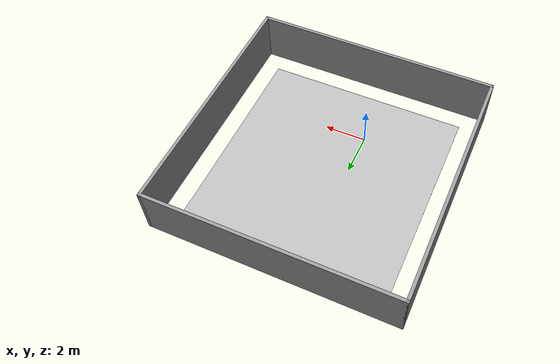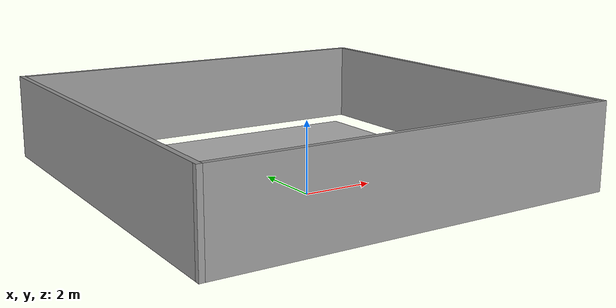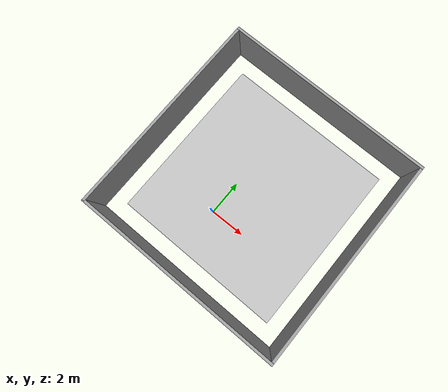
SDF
<?xml version="1.0"?>
<sdf version="1.6">
  <world name="default">

    <include>
      <uri>model://sun</uri>
    </include>

    <model name="ground">
      <pose>1 2.3 -.1 0 0 0</pose>
    <link name='Wall_1'>
      <collision name='Wall_1_Collision'>
        <geometry>
          <box>
            <size>12 0.15 2.5</size>
          </box>
        </geometry>
        <pose>0 0 1.25 0 -0 0</pose>
      </collision>
      <visual name='Wall_1_Visual'>
        <pose>0 0 1.25 0 -0 0</pose>
        <geometry>
          <box>
            <size>12 0.15 2.5</size>
          </box>
        </geometry>
        <material>
          <script>
            <uri>file://media/materials/scripts/gazebo.material</uri>
            <name>Gazebo/Grey</name>
          </script>
          <ambient>1 1 1 1</ambient>
        </material>
        <meta>
          <layer>0</layer>
        </meta>
      </visual>
      <pose>0 5.925 0 0 -0 0</pose>
    </link>
    <link name='Wall_2'>
      <collision name='Wall_2_Collision'>
        <geometry>
          <box>
            <size>12 0.15 2.5</size>
          </box>
        </geometry>
        <pose>0 0 1.25 0 -0 0</pose>
      </collision>
      <visual name='Wall_2_Visual'>
        <pose>0 0 1.25 0 -0 0</pose>
        <geometry>
          <box>
            <size>12 0.15 2.5</size>
          </box>
        </geometry>
        <material>
          <script>
            <uri>file://media/materials/scripts/gazebo.material</uri>
            <name>Gazebo/Grey</name>
          </script>
          <ambient>1 1 1 1</ambient>
        </material>
        <meta>
          <layer>0</layer>
        </meta>
      </visual>
      <pose>5.925 0 0 0 -0 -1.5708</pose>
    </link>
    <link name='Wall_3'>
      <collision name='Wall_3_Collision'>
        <geometry>
          <box>
            <size>12 0.15 2.5</size>
          </box>
        </geometry>
        <pose>0 0 1.25 0 -0 0</pose>
      </collision>
      <visual name='Wall_3_Visual'>
        <pose>0 0 1.25 0 -0 0</pose>
        <geometry>
          <box>
            <size>12 0.15 2.5</size>
          </box>
        </geometry>
        <material>
          <script>
            <uri>file://media/materials/scripts/gazebo.material</uri>
            <name>Gazebo/Grey</name>
          </script>
          <ambient>1 1 1 1</ambient>
        </material>
        <meta>
          <layer>0</layer>
        </meta>
      </visual>
      <pose>0 -5.925 0 0 -0 3.14159</pose>
    </link>
    <link name='Wall_4'>
      <collision name='Wall_4_Collision'>
        <geometry>
          <box>
            <size>12 0.15 2.5</size>
          </box>
        </geometry>
        <pose>0 0 1.25 0 -0 0</pose>
      </collision>
      <visual name='Wall_4_Visual'>
        <pose>0 0 1.25 0 -0 0</pose>
        <geometry>
          <box>
            <size>12 0.15 2.5</size>
          </box>
        </geometry>
        <material>
          <script>
            <uri>file://media/materials/scripts/gazebo.material</uri>
            <name>Gazebo/Grey</name>
          </script>
          <ambient>1 1 1 1</ambient>
        </material>
        <meta>
          <layer>0</layer>
        </meta>
      </visual>
      <pose>-5.925 0 0 0 -0 1.5708</pose>
    </link>

      <static>1</static>
      <link name="ground">
        <collision name="ground_coll">
          <geometry>
            <box>
              <size>10 10 .01</size>
            </box>
          </geometry>
          <surface>
            <contact>
              <ode/>
            </contact>
          </surface>
        </collision>
        <visual name="ground_vis">
          <geometry>
            <box>
              <size>10 10 .01</size>
            </box>
          </geometry>
          <material>
            <script>
              <uri>model://turtlebot3_course/course.material</uri>
              <name>course</name>
            </script>
          </material>
        </visual>
      </link>
    </model>

    <scene>
      <shadows>false</shadows>
    </scene>

    <gui fullscreen='0'>
      <camera name='user_camera'>
        <pose frame=''>0.319654 -0.235002 9.29441 0 1.5138 0.009599</pose>
        <view_controller>orbit</view_controller>
        <projection_type>perspective</projection_type>
      </camera>
    </gui>

    <physics type="ode">
      <real_time_update_rate>1000.0</real_time_update_rate>
      <max_step_size>0.001</max_step_size>
      <real_time_factor>1</real_time_factor>
      <ode>
        <solver>
          <type>quick</type>
          <iters>150</iters>
          <precon_iters>0</precon_iters>
          <sor>1.400000</sor>
          <use_dynamic_moi_rescaling>1</use_dynamic_moi_rescaling>
        </solver>
        <constraints>
          <cfm>0.00001</cfm>
          <erp>0.2</erp>
          <contact_max_correcting_vel>2000.000000</contact_max_correcting_vel>
          <contact_surface_layer>0.01000</contact_surface_layer>
        </constraints>
      </ode>
    </physics>

  </world>
</sdf>
